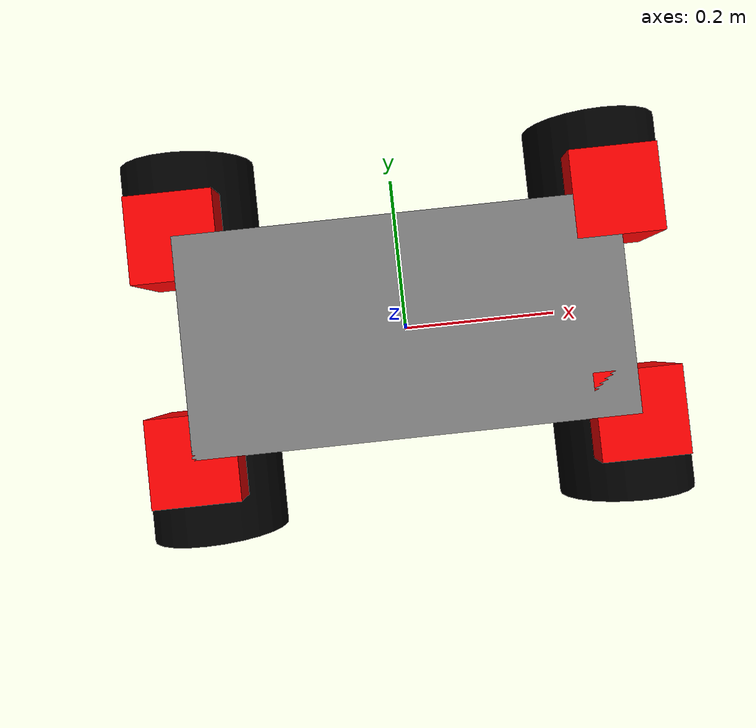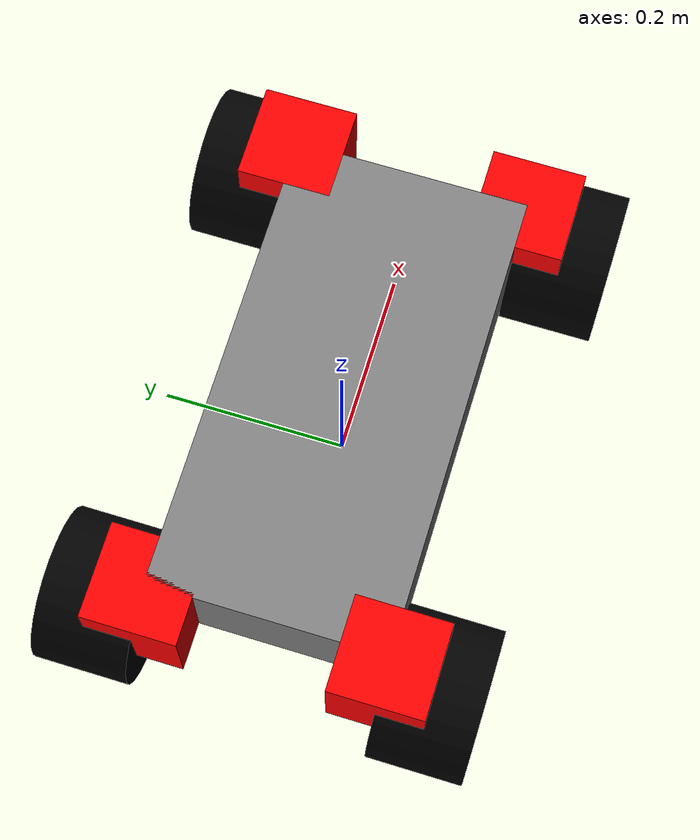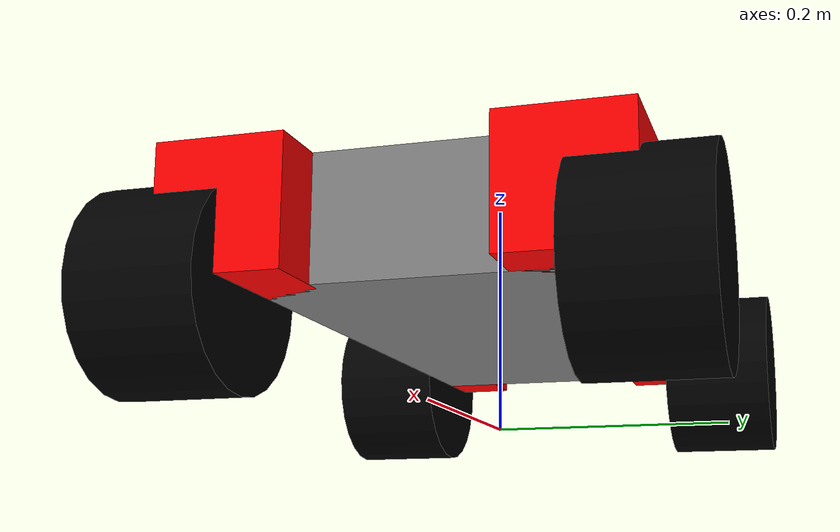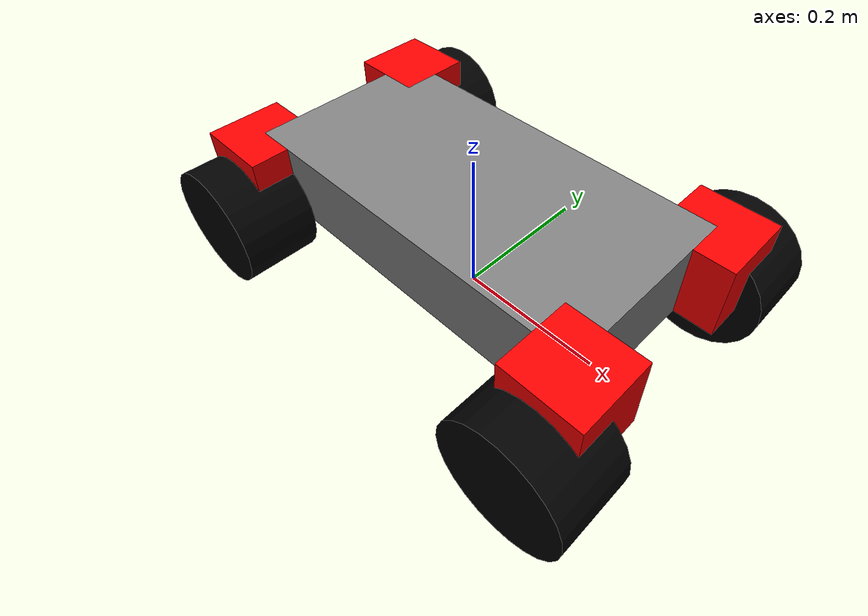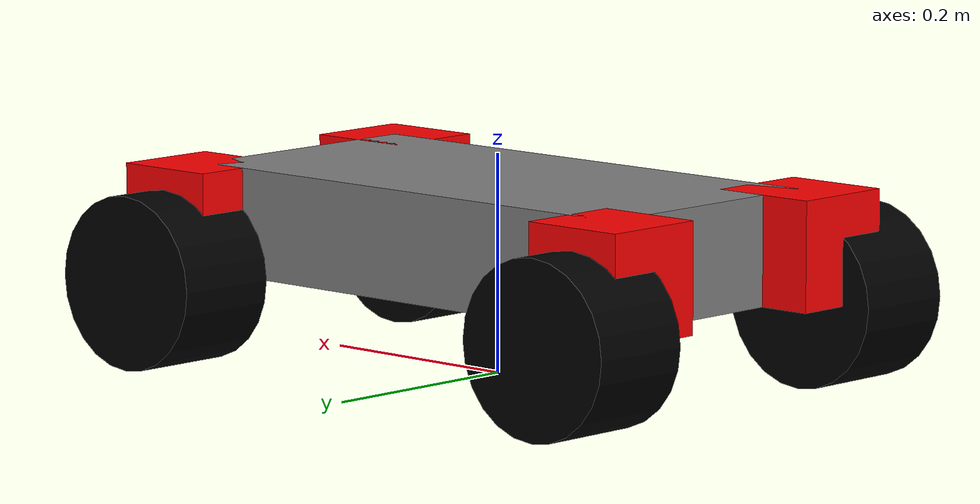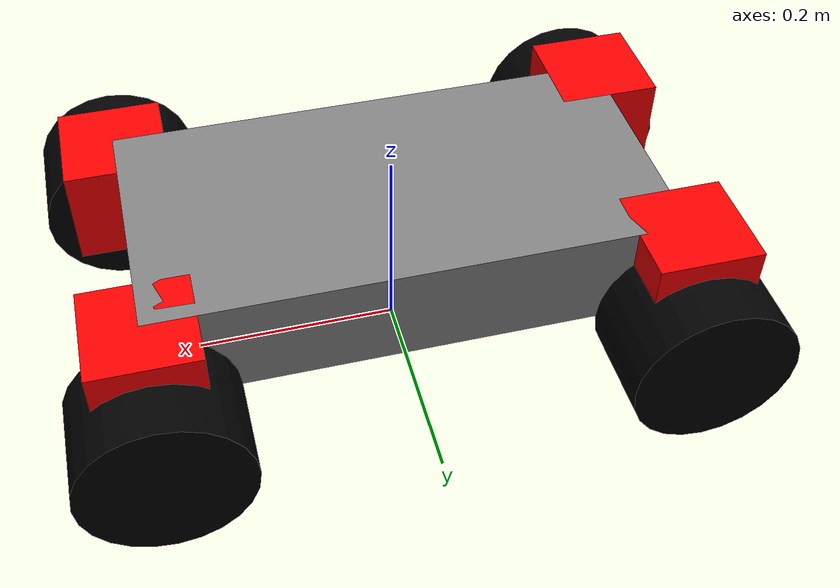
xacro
<?xml version="1.0"?>
<robot xmlns:xacro="http://ros.org/wiki/xacro" name="roboto">

  <!-- Macro para definir materiales -->
  <xacro:macro name="material" params="name color">
    <material name="${name}">
      <color rgba="${color}"/>
    </material>
  </xacro:macro>

  <!-- Macro para links -->
  <xacro:macro name="link_box" params="name size origin_xyz origin_rpy material_name material_color">
    <link name="${name}">
      <visual>
        <origin xyz="${origin_xyz}" rpy="${origin_rpy}"/>
        <geometry>
          <box size="${size}"/>
        </geometry>
        <xacro:material name="${material_name}" color="${material_color}"/>
      </visual>
      <collision>
        <origin xyz="${origin_xyz}" rpy="${origin_rpy}"/>
        <geometry>
          <box size="${size}"/>
        </geometry>
      </collision>
    </link>
  </xacro:macro>

  <!-- Macro para las ruedas -->
  <xacro:macro name="link_wheel" params="name radius length origin_xyz origin_rpy">
    <link name="${name}">
      <visual>
        <origin xyz="${origin_xyz}" rpy="${origin_rpy}"/>
        <geometry>
          <cylinder radius="${radius}" length="${length}"/>
        </geometry>
        <xacro:material name="black" color="0.0 0.0 0.0 1.0"/>
      </visual>
      <collision>
        <origin xyz="${origin_xyz}" rpy="${origin_rpy}"/>
        <geometry>
          <cylinder radius="${radius}" length="${length}"/>
        </geometry>
      </collision>
    </link>
  </xacro:macro>

  <!-- Macro para joints -->
  <xacro:macro name="joint" params="name type parent child origin_xyz origin_rpy axis lower upper effort velocity">
    <joint name="${name}" type="${type}">
      <origin xyz="${origin_xyz}" rpy="${origin_rpy}"/>
      <parent link="${parent}"/>
      <child link="${child}"/>
      <axis xyz="${axis}"/>
      <limit lower="${lower}" upper="${upper}" effort="${effort}" velocity="${velocity}"/>
    </joint>
  </xacro:macro>

  <!-- Definiciones de materiales -->
  <xacro:material name="grey" color="0.5 0.5 0.5 1.0"/>
  <xacro:material name="red" color="1.0 0.0 0.0 1.0"/>
  <xacro:material name="black" color="0.0 0.0 0.0 1.0"/>

  <!-- Chasis del robot -->
  <xacro:link_box name="base_link" size="0.5 0.25 0.1" origin_xyz="0.0 0.0 0.13" origin_rpy="0.0 0.0 0.0" material_name="grey" material_color="0.5 0.5 0.5 1.0"/>

  <!-- Ejes -->
  <xacro:link_box name="front_left_axle" size="0.1 0.1 0.1" origin_xyz="0 0 0" origin_rpy="0 0 0" material_name="red" material_color="1.0 0.0 0.0 1.0"/>
  <xacro:link_box name="front_right_axle" size="0.1 0.1 0.1" origin_xyz="0 0 0" origin_rpy="0 0 0" material_name="red" material_color="1.0 0.0 0.0 1.0"/>
  <xacro:link_box name="rear_left_axle" size="0.1 0.1 0.1" origin_xyz="0 0 0" origin_rpy="0 0 0" material_name="red" material_color="1.0 0.0 0.0 1.0"/>
  <xacro:link_box name="rear_right_axle" size="0.1 0.1 0.1" origin_xyz="0 0 0" origin_rpy="0 0 0" material_name="red" material_color="1.0 0.0 0.0 1.0"/>

  <!-- Ruedas -->
  <xacro:link_wheel name="front_left_wheel" radius="0.08" length="0.1" origin_xyz="0.0 0.0 0.0" origin_rpy="${pi/2} 0.0 0.0"/>
  <xacro:link_wheel name="front_right_wheel" radius="0.08" length="0.1" origin_xyz="0.0 0.0 0.0" origin_rpy="${pi/2} 0.0 0.0"/>
  <xacro:link_wheel name="rear_left_wheel" radius="0.08" length="0.1" origin_xyz="0.0 0.0 0.0" origin_rpy="${pi/2} 0.0 0.0"/>
  <xacro:link_wheel name="rear_right_wheel" radius="0.08" length="0.1" origin_xyz="0.0 0.0 0.0" origin_rpy="${pi/2} 0.0 0.0"/>

  <!-- Joints -->
  <xacro:joint name="front_left_axle_joint" type="revolute" parent="base_link" child="front_left_axle" origin_xyz="0.25 0.125 0.13" origin_rpy="0 0 0" axis="0 0 1" lower="${-pi/3}" upper="${pi/3}" effort="500.0" velocity="1.0"/>
  <xacro:joint name="front_right_axle_joint" type="revolute" parent="base_link" child="front_right_axle" origin_xyz="0.25 -0.125 0.13" origin_rpy="0 0 0" axis="0 0 1" lower="${-pi/3}" upper="${pi/3}" effort="500.0" velocity="1.0"/>
  <xacro:joint name="rear_left_axle_joint" type="fixed" parent="base_link" child="rear_left_axle" origin_xyz="-0.25 0.125 0.13" origin_rpy="0 0 0" axis="0 0 0" lower="0" upper="0" effort="0" velocity="0"/>
  <xacro:joint name="rear_right_axle_joint" type="fixed" parent="base_link" child="rear_right_axle" origin_xyz="-0.25 -0.125 0.13" origin_rpy="0 0 0" axis="0 0 0" lower="0" upper="0" effort="0" velocity="0"/>

  <!-- Joints de ruedas -->
  <xacro:joint name="front_left_wheel_joint" type="continuous" parent="front_left_axle" child="front_left_wheel" origin_xyz="0 0.05 -0.05" origin_rpy="0 0 0" axis="0 1 0" lower="0" upper="0" effort="0" velocity="0"/>
  <xacro:joint name="front_right_wheel_joint" type="continuous" parent="front_right_axle" child="front_right_wheel" origin_xyz="0 -0.05 -0.05" origin_rpy="${-pi} 0 0" axis="0 -1 0" lower="0" upper="0" effort="0" velocity="0"/>
  <xacro:joint name="rear_left_wheel_joint" type="continuous" parent="rear_left_axle" child="rear_left_wheel" origin_xyz="0 0.05 -0.05" origin_rpy="0 0 0" axis="0 1 0" lower="0" upper="0" effort="0" velocity="0"/>
  <xacro:joint name="rear_right_wheel_joint" type="continuous" parent="rear_right_axle" child="rear_right_wheel" origin_xyz="0 -0.05 -0.05" origin_rpy="${-pi} 0 0" axis="0 -1 0" lower="0" upper="0" effort="0" velocity="0"/>

</robot>
